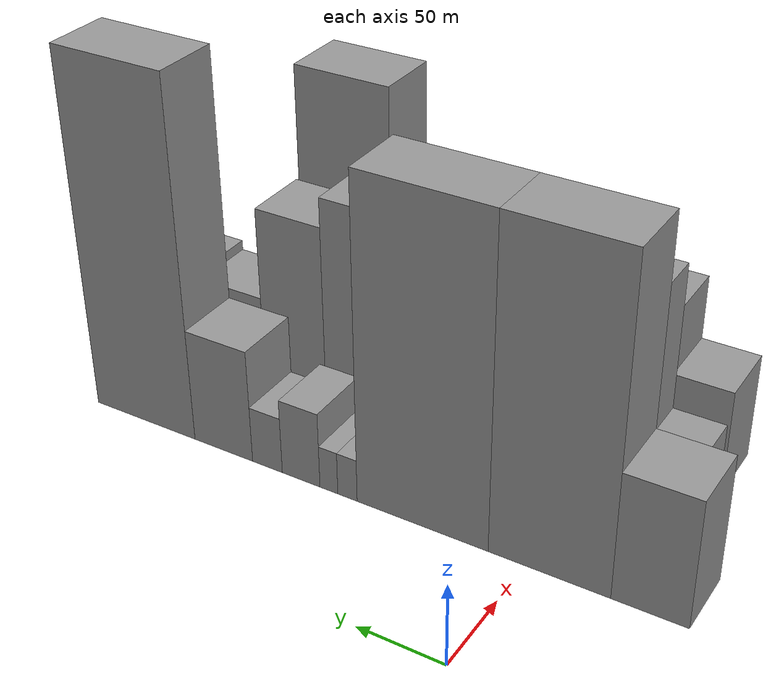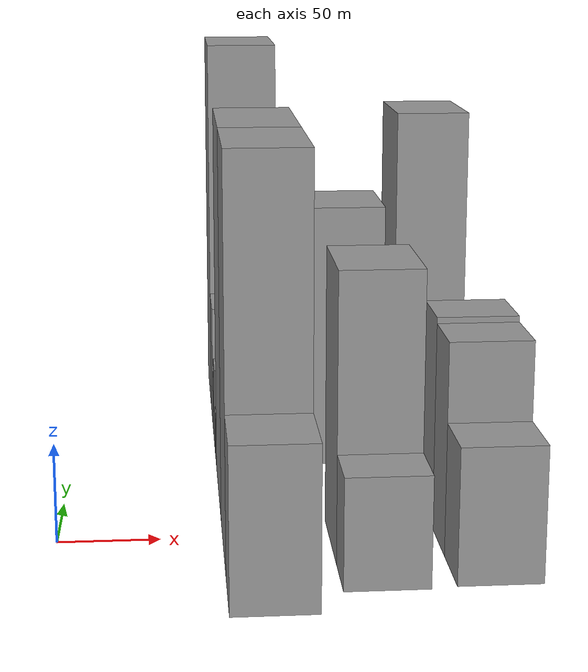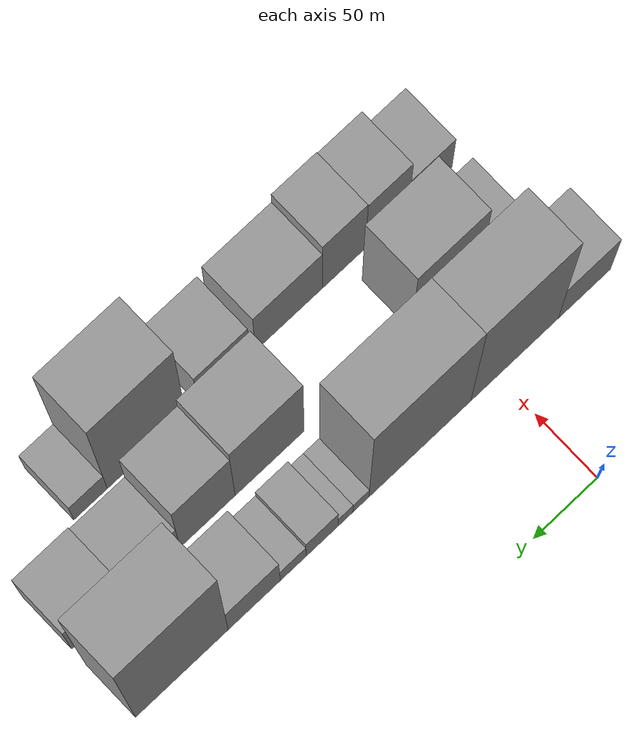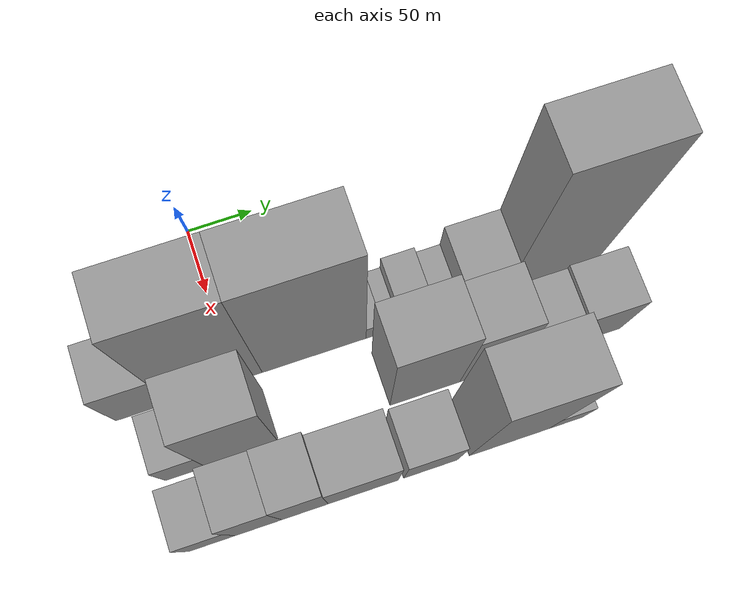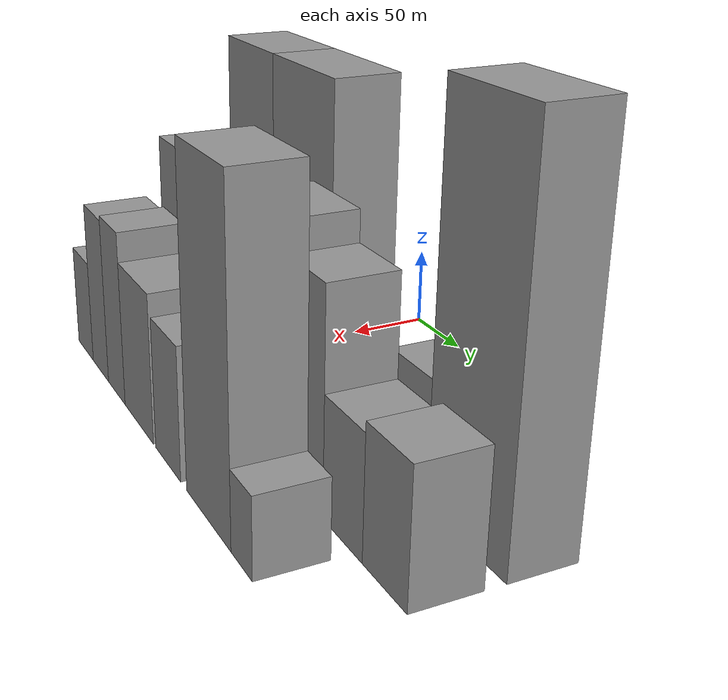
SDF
<sdf version="1.6">
 <world name="default">
  <model name="building_15">
   <static>1</static>
   <pose>100.0000 -67.6410 0 0.000000 0.000000 0.000000</pose>
   <link name="link">
    <pose>0 0 39.00 0 0 0</pose>
    <collision name="collision"><geometry><box><size>40.0000 41.2443 78.0000</size></box></geometry></collision>
    <visual name="visual">
     <cast_shadows>0</cast_shadows>
     <geometry><box><size>40.0000 41.2443 78.0000</size></box></geometry>
     <material>
      <script>
       <uri>model://grey_wall/materials/scripts</uri>
       <uri>model://grey_wall/materials/textures</uri>
       <name>vrc/grey_wall</name>
      </script>
     </material>
    </visual>
   </link>
  </model>
  <model name="building_16">
   <static>1</static>
   <pose>100.0000 -12.9384 0 0.000000 0.000000 0.000000</pose>
   <link name="link">
    <pose>0 0 99.00 0 0 0</pose>
    <collision name="collision"><geometry><box><size>40.0000 68.1609 198.0000</size></box></geometry></collision>
    <visual name="visual">
     <cast_shadows>0</cast_shadows>
     <geometry><box><size>40.0000 68.1609 198.0000</size></box></geometry>
     <material>
      <script>
       <uri>model://grey_wall/materials/scripts</uri>
       <uri>model://grey_wall/materials/textures</uri>
       <name>vrc/grey_wall</name>
      </script>
     </material>
    </visual>
   </link>
  </model>
  <model name="building_17">
   <static>1</static>
   <pose>100.0000 60.6066 0 0.000000 0.000000 0.000000</pose>
   <link name="link">
    <pose>0 0 99.00 0 0 0</pose>
    <collision name="collision"><geometry><box><size>40.0000 78.9291 198.0000</size></box></geometry></collision>
    <visual name="visual">
     <cast_shadows>0</cast_shadows>
     <geometry><box><size>40.0000 78.9291 198.0000</size></box></geometry>
     <material>
      <script>
       <uri>model://grey_wall/materials/scripts</uri>
       <uri>model://grey_wall/materials/textures</uri>
       <name>vrc/grey_wall</name>
      </script>
     </material>
    </visual>
   </link>
  </model>
  <model name="building_18">
   <static>1</static>
   <pose>100.0000 106.1872 0 0.000000 0.000000 0.000000</pose>
   <link name="link">
    <pose>0 0 13.50 0 0 0</pose>
    <collision name="collision"><geometry><box><size>40.0000 12.2322 27.0000</size></box></geometry></collision>
    <visual name="visual">
     <cast_shadows>0</cast_shadows>
     <geometry><box><size>40.0000 12.2322 27.0000</size></box></geometry>
     <material>
      <script>
       <uri>model://grey_wall/materials/scripts</uri>
       <uri>model://grey_wall/materials/textures</uri>
       <name>vrc/grey_wall</name>
      </script>
     </material>
    </visual>
   </link>
  </model>
  <model name="building_19">
   <static>1</static>
   <pose>100.0000 118.0213 0 0.000000 0.000000 0.000000</pose>
   <link name="link">
    <pose>0 0 13.50 0 0 0</pose>
    <collision name="collision"><geometry><box><size>40.0000 11.4359 27.0000</size></box></geometry></collision>
    <visual name="visual">
     <cast_shadows>0</cast_shadows>
     <geometry><box><size>40.0000 11.4359 27.0000</size></box></geometry>
     <material>
      <script>
       <uri>model://grey_wall/materials/scripts</uri>
       <uri>model://grey_wall/materials/textures</uri>
       <name>vrc/grey_wall</name>
      </script>
     </material>
    </visual>
   </link>
  </model>
  <model name="building_20">
   <static>1</static>
   <pose>100.0000 136.0296 0 0.000000 0.000000 0.000000</pose>
   <link name="link">
    <pose>0 0 24.00 0 0 0</pose>
    <collision name="collision"><geometry><box><size>40.0000 24.5808 48.0000</size></box></geometry></collision>
    <visual name="visual">
     <cast_shadows>0</cast_shadows>
     <geometry><box><size>40.0000 24.5808 48.0000</size></box></geometry>
     <material>
      <script>
       <uri>model://grey_wall/materials/scripts</uri>
       <uri>model://grey_wall/materials/textures</uri>
       <name>vrc/grey_wall</name>
      </script>
     </material>
    </visual>
   </link>
  </model>
  <model name="building_21">
   <static>1</static>
   <pose>100.0000 158.2399 0 0.000000 0.000000 0.000000</pose>
   <link name="link">
    <pose>0 0 18.00 0 0 0</pose>
    <collision name="collision"><geometry><box><size>40.0000 19.8397 36.0000</size></box></geometry></collision>
    <visual name="visual">
     <cast_shadows>0</cast_shadows>
     <geometry><box><size>40.0000 19.8397 36.0000</size></box></geometry>
     <material>
      <script>
       <uri>model://grey_wall/materials/scripts</uri>
       <uri>model://grey_wall/materials/textures</uri>
       <name>vrc/grey_wall</name>
      </script>
     </material>
    </visual>
   </link>
  </model>
  <model name="building_22">
   <static>1</static>
   <pose>100.0000 188.0186 0 0.000000 0.000000 0.000000</pose>
   <link name="link">
    <pose>0 0 36.00 0 0 0</pose>
    <collision name="collision"><geometry><box><size>40.0000 39.7177 72.0000</size></box></geometry></collision>
    <visual name="visual">
     <cast_shadows>0</cast_shadows>
     <geometry><box><size>40.0000 39.7177 72.0000</size></box></geometry>
     <material>
      <script>
       <uri>model://grey_wall/materials/scripts</uri>
       <uri>model://grey_wall/materials/textures</uri>
       <name>vrc/grey_wall</name>
      </script>
     </material>
    </visual>
   </link>
  </model>
  <model name="building_23">
   <static>1</static>
   <pose>100.0000 242.9697 0 0.000000 0.000000 0.000000</pose>
   <link name="link">
    <pose>0 0 111.00 0 0 0</pose>
    <collision name="collision"><geometry><box><size>40.0000 70.1845 222.0000</size></box></geometry></collision>
    <visual name="visual">
     <cast_shadows>0</cast_shadows>
     <geometry><box><size>40.0000 70.1845 222.0000</size></box></geometry>
     <material>
      <script>
       <uri>model://grey_wall/materials/scripts</uri>
       <uri>model://grey_wall/materials/textures</uri>
       <name>vrc/grey_wall</name>
      </script>
     </material>
    </visual>
   </link>
  </model>
  <model name="building_49">
   <static>1</static>
   <pose>152.0000 -51.4175 0 0.000000 0.000000 0.000000</pose>
   <link name="link">
    <pose>0 0 27.00 0 0 0</pose>
    <collision name="collision"><geometry><box><size>40.0000 29.8444 54.0000</size></box></geometry></collision>
    <visual name="visual">
     <cast_shadows>0</cast_shadows>
     <geometry><box><size>40.0000 29.8444 54.0000</size></box></geometry>
     <material>
      <script>
       <uri>model://grey_wall/materials/scripts</uri>
       <uri>model://grey_wall/materials/textures</uri>
       <name>vrc/grey_wall</name>
      </script>
     </material>
    </visual>
   </link>
  </model>
  <model name="building_50">
   <static>1</static>
   <pose>152.0000 -9.5820 0 0.000000 0.000000 0.000000</pose>
   <link name="link">
    <pose>0 0 70.50 0 0 0</pose>
    <collision name="collision"><geometry><box><size>40.0000 53.8266 141.0000</size></box></geometry></collision>
    <visual name="visual">
     <cast_shadows>0</cast_shadows>
     <geometry><box><size>40.0000 53.8266 141.0000</size></box></geometry>
     <material>
      <script>
       <uri>model://grey_wall/materials/scripts</uri>
       <uri>model://grey_wall/materials/textures</uri>
       <name>vrc/grey_wall</name>
      </script>
     </material>
    </visual>
   </link>
  </model>
  <model name="building_51">
   <static>1</static>
   <pose>152.0000 126.9348 0 0.000000 0.000000 0.000000</pose>
   <link name="link">
    <pose>0 0 72.00 0 0 0</pose>
    <collision name="collision"><geometry><box><size>40.0000 53.0690 144.0000</size></box></geometry></collision>
    <visual name="visual">
     <cast_shadows>0</cast_shadows>
     <geometry><box><size>40.0000 53.0690 144.0000</size></box></geometry>
     <material>
      <script>
       <uri>model://grey_wall/materials/scripts</uri>
       <uri>model://grey_wall/materials/textures</uri>
       <name>vrc/grey_wall</name>
      </script>
     </material>
    </visual>
   </link>
  </model>
  <model name="building_52">
   <static>1</static>
   <pose>152.0000 174.4519 0 0.000000 0.000000 0.000000</pose>
   <link name="link">
    <pose>0 0 63.00 0 0 0</pose>
    <collision name="collision"><geometry><box><size>40.0000 41.9653 126.0000</size></box></geometry></collision>
    <visual name="visual">
     <cast_shadows>0</cast_shadows>
     <geometry><box><size>40.0000 41.9653 126.0000</size></box></geometry>
     <material>
      <script>
       <uri>model://grey_wall/materials/scripts</uri>
       <uri>model://grey_wall/materials/textures</uri>
       <name>vrc/grey_wall</name>
      </script>
     </material>
    </visual>
   </link>
  </model>
  <model name="building_53">
   <static>1</static>
   <pose>152.0000 215.9594 0 0.000000 0.000000 0.000000</pose>
   <link name="link">
    <pose>0 0 34.50 0 0 0</pose>
    <collision name="collision"><geometry><box><size>40.0000 41.0497 69.0000</size></box></geometry></collision>
    <visual name="visual">
     <cast_shadows>0</cast_shadows>
     <geometry><box><size>40.0000 41.0497 69.0000</size></box></geometry>
     <material>
      <script>
       <uri>model://grey_wall/materials/scripts</uri>
       <uri>model://grey_wall/materials/textures</uri>
       <name>vrc/grey_wall</name>
      </script>
     </material>
    </visual>
   </link>
  </model>
  <model name="building_54">
   <static>1</static>
   <pose>152.0000 257.1814 0 0.000000 0.000000 0.000000</pose>
   <link name="link">
    <pose>0 0 37.50 0 0 0</pose>
    <collision name="collision"><geometry><box><size>40.0000 41.3941 75.0000</size></box></geometry></collision>
    <visual name="visual">
     <cast_shadows>0</cast_shadows>
     <geometry><box><size>40.0000 41.3941 75.0000</size></box></geometry>
     <material>
      <script>
       <uri>model://grey_wall/materials/scripts</uri>
       <uri>model://grey_wall/materials/textures</uri>
       <name>vrc/grey_wall</name>
      </script>
     </material>
    </visual>
   </link>
  </model>
  <model name="building_75">
   <static>1</static>
   <pose>204.0000 -47.5161 0 0.000000 0.000000 0.000000</pose>
   <link name="link">
    <pose>0 0 33.00 0 0 0</pose>
    <collision name="collision"><geometry><box><size>40.0000 33.8776 66.0000</size></box></geometry></collision>
    <visual name="visual">
     <cast_shadows>0</cast_shadows>
     <geometry><box><size>40.0000 33.8776 66.0000</size></box></geometry>
     <material>
      <script>
       <uri>model://grey_wall/materials/scripts</uri>
       <uri>model://grey_wall/materials/textures</uri>
       <name>vrc/grey_wall</name>
      </script>
     </material>
    </visual>
   </link>
  </model>
  <model name="building_76">
   <static>1</static>
   <pose>204.0000 -13.7447 0 0.000000 0.000000 0.000000</pose>
   <link name="link">
    <pose>0 0 52.50 0 0 0</pose>
    <collision name="collision"><geometry><box><size>40.0000 33.6651 105.0000</size></box></geometry></collision>
    <visual name="visual">
     <cast_shadows>0</cast_shadows>
     <geometry><box><size>40.0000 33.6651 105.0000</size></box></geometry>
     <material>
      <script>
       <uri>model://grey_wall/materials/scripts</uri>
       <uri>model://grey_wall/materials/textures</uri>
       <name>vrc/grey_wall</name>
      </script>
     </material>
    </visual>
   </link>
  </model>
  <model name="building_77">
   <static>1</static>
   <pose>204.0000 19.9816 0 0.000000 0.000000 0.000000</pose>
   <link name="link">
    <pose>0 0 54.00 0 0 0</pose>
    <collision name="collision"><geometry><box><size>40.0000 33.7875 108.0000</size></box></geometry></collision>
    <visual name="visual">
     <cast_shadows>0</cast_shadows>
     <geometry><box><size>40.0000 33.7875 108.0000</size></box></geometry>
     <material>
      <script>
       <uri>model://grey_wall/materials/scripts</uri>
       <uri>model://grey_wall/materials/textures</uri>
       <name>vrc/grey_wall</name>
      </script>
     </material>
    </visual>
   </link>
  </model>
  <model name="building_78">
   <static>1</static>
   <pose>204.0000 62.8105 0 0.000000 0.000000 0.000000</pose>
   <link name="link">
    <pose>0 0 45.00 0 0 0</pose>
    <collision name="collision"><geometry><box><size>40.0000 51.8705 90.0000</size></box></geometry></collision>
    <visual name="visual">
     <cast_shadows>0</cast_shadows>
     <geometry><box><size>40.0000 51.8705 90.0000</size></box></geometry>
     <material>
      <script>
       <uri>model://grey_wall/materials/scripts</uri>
       <uri>model://grey_wall/materials/textures</uri>
       <name>vrc/grey_wall</name>
      </script>
     </material>
    </visual>
   </link>
  </model>
  <model name="building_79">
   <static>1</static>
   <pose>204.0000 112.8228 0 0.000000 0.000000 0.000000</pose>
   <link name="link">
    <pose>0 0 39.00 0 0 0</pose>
    <collision name="collision"><geometry><box><size>40.0000 40.1541 78.0000</size></box></geometry></collision>
    <visual name="visual">
     <cast_shadows>0</cast_shadows>
     <geometry><box><size>40.0000 40.1541 78.0000</size></box></geometry>
     <material>
      <script>
       <uri>model://grey_wall/materials/scripts</uri>
       <uri>model://grey_wall/materials/textures</uri>
       <name>vrc/grey_wall</name>
      </script>
     </material>
    </visual>
   </link>
  </model>
  <model name="building_80">
   <static>1</static>
   <pose>204.0000 172.1068 0 0.000000 0.000000 0.000000</pose>
   <link name="link">
    <pose>0 0 94.50 0 0 0</pose>
    <collision name="collision"><geometry><box><size>40.0000 60.4139 189.0000</size></box></geometry></collision>
    <visual name="visual">
     <cast_shadows>0</cast_shadows>
     <geometry><box><size>40.0000 60.4139 189.0000</size></box></geometry>
     <material>
      <script>
       <uri>model://grey_wall/materials/scripts</uri>
       <uri>model://grey_wall/materials/textures</uri>
       <name>vrc/grey_wall</name>
      </script>
     </material>
    </visual>
   </link>
  </model>
  <model name="building_81">
   <static>1</static>
   <pose>204.0000 215.1032 0 0.000000 0.000000 0.000000</pose>
   <link name="link">
    <pose>0 0 22.50 0 0 0</pose>
    <collision name="collision"><geometry><box><size>40.0000 25.5790 45.0000</size></box></geometry></collision>
    <visual name="visual">
     <cast_shadows>0</cast_shadows>
     <geometry><box><size>40.0000 25.5790 45.0000</size></box></geometry>
     <material>
      <script>
       <uri>model://grey_wall/materials/scripts</uri>
       <uri>model://grey_wall/materials/textures</uri>
       <name>vrc/grey_wall</name>
      </script>
     </material>
    </visual>
   </link>
  </model>
 </world>
</sdf>
